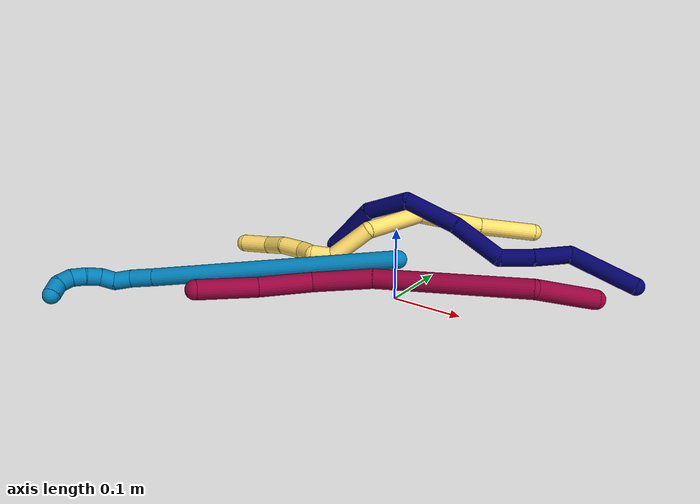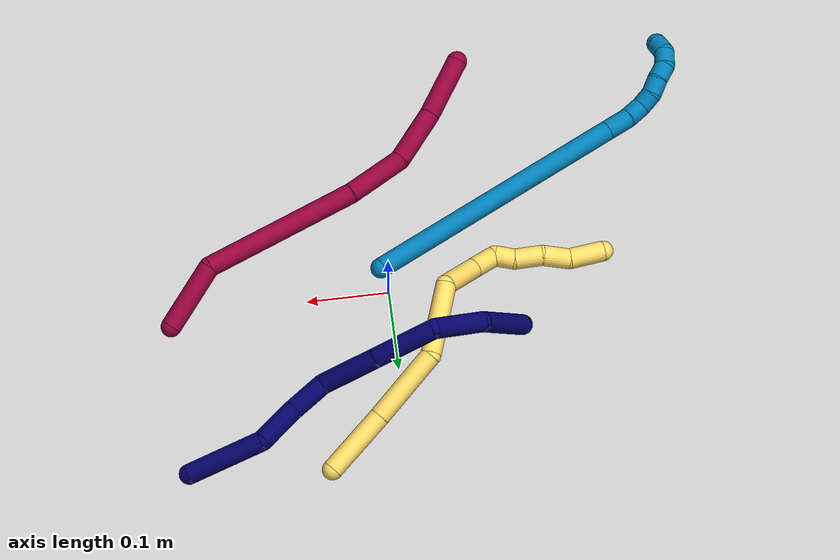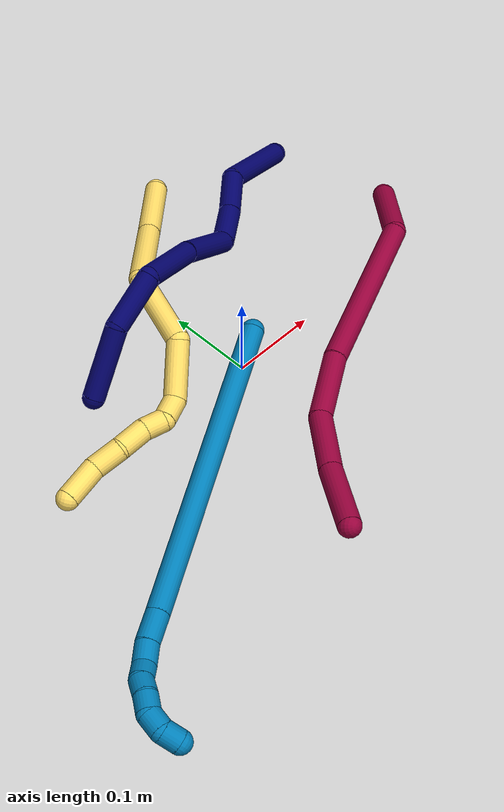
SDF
<sdf version="1.7">
 <world name="default">
  <model name="5">
   <static>0</static>
   <link name="5">
    <collision name="collision-cylinder-e_1_1_4">
     <pose>-0.02681 -0.032291 0.002354 1.49804 -0.691631 -0.646477</pose>
     <geometry><cylinder><radius>0.0125</radius><length>0.084072</length></cylinder></geometry>
     <surface>
      <friction><ode><mu>1.16</mu><mu2>1.16</mu2><slip1>0</slip1><slip2>0</slip2></ode></friction>
      <contact><ode><kp>1e+06</kp><kd>1</kd><max_vel>0</max_vel><min_depth>0.001</min_depth></ode></contact>
     </surface>
    </collision>
    <visual name="visual-cylinder-e_1_1_4">
     <pose>-0.02681 -0.032291 0.002354 1.49804 -0.691631 -0.646477</pose>
     <geometry><cylinder><radius>0.0125</radius><length>0.084072</length></cylinder></geometry>
     <material><ambient>1 0.858824 0.4 1</ambient></material>
    </visual>
    <collision name="collision-cylinder-e_2_4_5">
     <pose>-0.080506 -0.102997 0.008243 1.47903 -0.60865 -0.55806</pose>
     <geometry><cylinder><radius>0.0125</radius><length>0.094044</length></cylinder></geometry>
     <surface>
      <friction><ode><mu>1.16</mu><mu2>1.16</mu2><slip1>0</slip1><slip2>0</slip2></ode></friction>
      <contact><ode><kp>1e+06</kp><kd>1</kd><max_vel>0</max_vel><min_depth>0.001</min_depth></ode></contact>
     </surface>
    </collision>
    <visual name="visual-cylinder-e_2_4_5">
     <pose>-0.080506 -0.102997 0.008243 1.47903 -0.60865 -0.55806</pose>
     <geometry><cylinder><radius>0.0125</radius><length>0.094044</length></cylinder></geometry>
     <material><ambient>1 0.858824 0.4 1</ambient></material>
    </visual>
    <collision name="collision-cylinder-e_3_5_6">
     <pose>-0.134337 -0.172401 -0.011085 2.20644 -0.610533 -1.11589</pose>
     <geometry><cylinder><radius>0.0125</radius><length>0.094001</length></cylinder></geometry>
     <surface>
      <friction><ode><mu>1.16</mu><mu2>1.16</mu2><slip1>0</slip1><slip2>0</slip2></ode></friction>
      <contact><ode><kp>1e+06</kp><kd>1</kd><max_vel>0</max_vel><min_depth>0.001</min_depth></ode></contact>
     </surface>
    </collision>
    <visual name="visual-cylinder-e_3_5_6">
     <pose>-0.134337 -0.172401 -0.011085 2.20644 -0.610533 -1.11589</pose>
     <geometry><cylinder><radius>0.0125</radius><length>0.094001</length></cylinder></geometry>
     <material><ambient>1 0.858824 0.4 1</ambient></material>
    </visual>
    <collision name="collision-cylinder-e_4_6_7">
     <pose>-0.192402 -0.206831 -0.03912 2.55447 -1.37374 -2.43527</pose>
     <geometry><cylinder><radius>0.0125</radius><length>0.063467</length></cylinder></geometry>
     <surface>
      <friction><ode><mu>1.16</mu><mu2>1.16</mu2><slip1>0</slip1><slip2>0</slip2></ode></friction>
      <contact><ode><kp>1e+06</kp><kd>1</kd><max_vel>0</max_vel><min_depth>0.001</min_depth></ode></contact>
     </surface>
    </collision>
    <visual name="visual-cylinder-e_4_6_7">
     <pose>-0.192402 -0.206831 -0.03912 2.55447 -1.37374 -2.43527</pose>
     <geometry><cylinder><radius>0.0125</radius><length>0.063467</length></cylinder></geometry>
     <material><ambient>1 0.858824 0.4 1</ambient></material>
    </visual>
    <collision name="collision-cylinder-e_5_7_8">
     <pose>-0.234296 -0.219417 -0.039709 1.10612 -0.811424 -0.518401</pose>
     <geometry><cylinder><radius>0.0125</radius><length>0.029714</length></cylinder></geometry>
     <surface>
      <friction><ode><mu>1.16</mu><mu2>1.16</mu2><slip1>0</slip1><slip2>0</slip2></ode></friction>
      <contact><ode><kp>1e+06</kp><kd>1</kd><max_vel>0</max_vel><min_depth>0.001</min_depth></ode></contact>
     </surface>
    </collision>
    <visual name="visual-cylinder-e_5_7_8">
     <pose>-0.234296 -0.219417 -0.039709 1.10612 -0.811424 -0.518401</pose>
     <geometry><cylinder><radius>0.0125</radius><length>0.029714</length></cylinder></geometry>
     <material><ambient>1 0.858824 0.4 1</ambient></material>
    </visual>
    <collision name="collision-cylinder-e_6_8_9">
     <pose>-0.252293 -0.230018 -0.02553 0.150702 -0.639727 -0.050003</pose>
     <geometry><cylinder><radius>0.0125</radius><length>0.024194</length></cylinder></geometry>
     <surface>
      <friction><ode><mu>1.16</mu><mu2>1.16</mu2><slip1>0</slip1><slip2>0</slip2></ode></friction>
      <contact><ode><kp>1e+06</kp><kd>1</kd><max_vel>0</max_vel><min_depth>0.001</min_depth></ode></contact>
     </surface>
    </collision>
    <visual name="visual-cylinder-e_6_8_9">
     <pose>-0.252293 -0.230018 -0.02553 0.150702 -0.639727 -0.050003</pose>
     <geometry><cylinder><radius>0.0125</radius><length>0.024194</length></cylinder></geometry>
     <material><ambient>1 0.858824 0.4 1</ambient></material>
    </visual>
    <collision name="collision-cylinder-e_7_9_10">
     <pose>-0.271214 -0.23772 -0.005525 0.540406 -0.766913 -0.222556</pose>
     <geometry><cylinder><radius>0.0125</radius><length>0.03372</length></cylinder></geometry>
     <surface>
      <friction><ode><mu>1.16</mu><mu2>1.16</mu2><slip1>0</slip1><slip2>0</slip2></ode></friction>
      <contact><ode><kp>1e+06</kp><kd>1</kd><max_vel>0</max_vel><min_depth>0.001</min_depth></ode></contact>
     </surface>
    </collision>
    <visual name="visual-cylinder-e_7_9_10">
     <pose>-0.271214 -0.23772 -0.005525 0.540406 -0.766913 -0.222556</pose>
     <geometry><cylinder><radius>0.0125</radius><length>0.03372</length></cylinder></geometry>
     <material><ambient>1 0.858824 0.4 1</ambient></material>
    </visual>
    <collision name="collision-cylinder-e_8_10_11">
     <pose>-0.295523 -0.2452 0.01587 0.111795 -0.851006 -0.050706</pose>
     <geometry><cylinder><radius>0.0125</radius><length>0.033538</length></cylinder></geometry>
     <surface>
      <friction><ode><mu>1.16</mu><mu2>1.16</mu2><slip1>0</slip1><slip2>0</slip2></ode></friction>
      <contact><ode><kp>1e+06</kp><kd>1</kd><max_vel>0</max_vel><min_depth>0.001</min_depth></ode></contact>
     </surface>
    </collision>
    <visual name="visual-cylinder-e_8_10_11">
     <pose>-0.295523 -0.2452 0.01587 0.111795 -0.851006 -0.050706</pose>
     <geometry><cylinder><radius>0.0125</radius><length>0.033538</length></cylinder></geometry>
     <material><ambient>1 0.858824 0.4 1</ambient></material>
    </visual>
    <collision name="collision-cylinder-e_9_11_2">
     <pose>-0.325271 -0.254534 0.037261 0.661561 -0.915 -0.334968</pose>
     <geometry><cylinder><radius>0.0125</radius><length>0.04325</length></cylinder></geometry>
     <surface>
      <friction><ode><mu>1.16</mu><mu2>1.16</mu2><slip1>0</slip1><slip2>0</slip2></ode></friction>
      <contact><ode><kp>1e+06</kp><kd>1</kd><max_vel>0</max_vel><min_depth>0.001</min_depth></ode></contact>
     </surface>
    </collision>
    <visual name="visual-cylinder-e_9_11_2">
     <pose>-0.325271 -0.254534 0.037261 0.661561 -0.915 -0.334968</pose>
     <geometry><cylinder><radius>0.0125</radius><length>0.04325</length></cylinder></geometry>
     <material><ambient>1 0.858824 0.4 1</ambient></material>
    </visual>
    <collision name="collision-sphere-2">
     <pose>-0.342411 -0.262635 0.047665 0 -0 0</pose>
     <geometry><sphere><radius>0.0125</radius></sphere></geometry>
     <surface>
      <friction><ode><mu>1.16</mu><mu2>1.16</mu2><slip1>0</slip1><slip2>0</slip2></ode></friction>
      <contact><ode><kp>1e+06</kp><kd>1</kd><max_vel>0</max_vel><min_depth>0.001</min_depth></ode></contact>
     </surface>
    </collision>
    <visual name="visual-sphere-2">
     <pose>-0.342411 -0.262635 0.047665 0 -0 0</pose>
     <geometry><sphere><radius>0.0125</radius></sphere></geometry>
     <material><ambient>1 0.858824 0.4 1</ambient></material>
    </visual>
    <collision name="collision-sphere-11">
     <pose>-0.308132 -0.246433 0.026856 0 -0 0</pose>
     <geometry><sphere><radius>0.0125</radius></sphere></geometry>
     <surface>
      <friction><ode><mu>1.16</mu><mu2>1.16</mu2><slip1>0</slip1><slip2>0</slip2></ode></friction>
      <contact><ode><kp>1e+06</kp><kd>1</kd><max_vel>0</max_vel><min_depth>0.001</min_depth></ode></contact>
     </surface>
    </collision>
    <visual name="visual-sphere-11">
     <pose>-0.308132 -0.246433 0.026856 0 -0 0</pose>
     <geometry><sphere><radius>0.0125</radius></sphere></geometry>
     <material><ambient>1 0.858824 0.4 1</ambient></material>
    </visual>
    <collision name="collision-sphere-10">
     <pose>-0.282914 -0.243966 0.004885 0 -0 0</pose>
     <geometry><sphere><radius>0.0125</radius></sphere></geometry>
     <surface>
      <friction><ode><mu>1.16</mu><mu2>1.16</mu2><slip1>0</slip1><slip2>0</slip2></ode></friction>
      <contact><ode><kp>1e+06</kp><kd>1</kd><max_vel>0</max_vel><min_depth>0.001</min_depth></ode></contact>
     </surface>
    </collision>
    <visual name="visual-sphere-10">
     <pose>-0.282914 -0.243966 0.004885 0 -0 0</pose>
     <geometry><sphere><radius>0.0125</radius></sphere></geometry>
     <material><ambient>1 0.858824 0.4 1</ambient></material>
    </visual>
    <collision name="collision-sphere-9">
     <pose>-0.259515 -0.231475 -0.015935 0 -0 0</pose>
     <geometry><sphere><radius>0.0125</radius></sphere></geometry>
     <surface>
      <friction><ode><mu>1.16</mu><mu2>1.16</mu2><slip1>0</slip1><slip2>0</slip2></ode></friction>
      <contact><ode><kp>1e+06</kp><kd>1</kd><max_vel>0</max_vel><min_depth>0.001</min_depth></ode></contact>
     </surface>
    </collision>
    <visual name="visual-sphere-9">
     <pose>-0.259515 -0.231475 -0.015935 0 -0 0</pose>
     <geometry><sphere><radius>0.0125</radius></sphere></geometry>
     <material><ambient>1 0.858824 0.4 1</ambient></material>
    </visual>
    <collision name="collision-sphere-4">
     <pose>-0.053621 -0.064582 0.004707 0 -0 0</pose>
     <geometry><sphere><radius>0.0125</radius></sphere></geometry>
     <surface>
      <friction><ode><mu>1.16</mu><mu2>1.16</mu2><slip1>0</slip1><slip2>0</slip2></ode></friction>
      <contact><ode><kp>1e+06</kp><kd>1</kd><max_vel>0</max_vel><min_depth>0.001</min_depth></ode></contact>
     </surface>
    </collision>
    <visual name="visual-sphere-4">
     <pose>-0.053621 -0.064582 0.004707 0 -0 0</pose>
     <geometry><sphere><radius>0.0125</radius></sphere></geometry>
     <material><ambient>1 0.858824 0.4 1</ambient></material>
    </visual>
    <collision name="collision-sphere-1">
     <geometry><sphere><radius>0.0125</radius></sphere></geometry>
     <surface>
      <friction><ode><mu>1.16</mu><mu2>1.16</mu2><slip1>0</slip1><slip2>0</slip2></ode></friction>
      <contact><ode><kp>1e+06</kp><kd>1</kd><max_vel>0</max_vel><min_depth>0.001</min_depth></ode></contact>
     </surface>
    </collision>
    <visual name="visual-sphere-1">
     <geometry><sphere><radius>0.0125</radius></sphere></geometry>
     <material><ambient>1 0.858824 0.4 1</ambient></material>
    </visual>
    <collision name="collision-sphere-8">
     <pose>-0.245072 -0.228561 -0.035125 0 -0 0</pose>
     <geometry><sphere><radius>0.0125</radius></sphere></geometry>
     <surface>
      <friction><ode><mu>1.16</mu><mu2>1.16</mu2><slip1>0</slip1><slip2>0</slip2></ode></friction>
      <contact><ode><kp>1e+06</kp><kd>1</kd><max_vel>0</max_vel><min_depth>0.001</min_depth></ode></contact>
     </surface>
    </collision>
    <visual name="visual-sphere-8">
     <pose>-0.245072 -0.228561 -0.035125 0 -0 0</pose>
     <geometry><sphere><radius>0.0125</radius></sphere></geometry>
     <material><ambient>1 0.858824 0.4 1</ambient></material>
    </visual>
    <collision name="collision-sphere-5">
     <pose>-0.107392 -0.141413 0.011778 0 -0 0</pose>
     <geometry><sphere><radius>0.0125</radius></sphere></geometry>
     <surface>
      <friction><ode><mu>1.16</mu><mu2>1.16</mu2><slip1>0</slip1><slip2>0</slip2></ode></friction>
      <contact><ode><kp>1e+06</kp><kd>1</kd><max_vel>0</max_vel><min_depth>0.001</min_depth></ode></contact>
     </surface>
    </collision>
    <visual name="visual-sphere-5">
     <pose>-0.107392 -0.141413 0.011778 0 -0 0</pose>
     <geometry><sphere><radius>0.0125</radius></sphere></geometry>
     <material><ambient>1 0.858824 0.4 1</ambient></material>
    </visual>
    <collision name="collision-sphere-6">
     <pose>-0.161283 -0.203389 -0.033948 0 -0 0</pose>
     <geometry><sphere><radius>0.0125</radius></sphere></geometry>
     <surface>
      <friction><ode><mu>1.16</mu><mu2>1.16</mu2><slip1>0</slip1><slip2>0</slip2></ode></friction>
      <contact><ode><kp>1e+06</kp><kd>1</kd><max_vel>0</max_vel><min_depth>0.001</min_depth></ode></contact>
     </surface>
    </collision>
    <visual name="visual-sphere-6">
     <pose>-0.161283 -0.203389 -0.033948 0 -0 0</pose>
     <geometry><sphere><radius>0.0125</radius></sphere></geometry>
     <material><ambient>1 0.858824 0.4 1</ambient></material>
    </visual>
    <collision name="collision-sphere-7">
     <pose>-0.223521 -0.210273 -0.044293 0 -0 0</pose>
     <geometry><sphere><radius>0.0125</radius></sphere></geometry>
     <surface>
      <friction><ode><mu>1.16</mu><mu2>1.16</mu2><slip1>0</slip1><slip2>0</slip2></ode></friction>
      <contact><ode><kp>1e+06</kp><kd>1</kd><max_vel>0</max_vel><min_depth>0.001</min_depth></ode></contact>
     </surface>
    </collision>
    <visual name="visual-sphere-7">
     <pose>-0.223521 -0.210273 -0.044293 0 -0 0</pose>
     <geometry><sphere><radius>0.0125</radius></sphere></geometry>
     <material><ambient>1 0.858824 0.4 1</ambient></material>
    </visual>
    <inertial>
     <pose>-0.161709 -0.162133 -0.004784 0 -0 0</pose>
     <mass>0.5</mass>
     <inertia>
      <ixx>-2.3e-05</ixx>
      <ixy>0</ixy>
      <ixz>0</ixz>
      <iyy>-3.1e-05</iyy>
      <iyz>0</iyz>
      <izz>0.000319</izz>
     </inertia>
    </inertial>
   </link>
   <pose>0.094887 0.233862 0.04665 -1.17644 -0.698499 0.471186</pose>
  </model>
  <model name="7">
   <static>0</static>
   <link name="7">
    <collision name="collision-cylinder-e_1_1_4">
     <pose>-0.030804 0.023376 -0.030326 -2.4849 -0.677476 1.60439</pose>
     <geometry><cylinder><radius>0.0125</radius><length>0.098285</length></cylinder></geometry>
     <surface>
      <friction><ode><mu>1.16</mu><mu2>1.16</mu2><slip1>0</slip1><slip2>0</slip2></ode></friction>
      <contact><ode><kp>1e+06</kp><kd>1</kd><max_vel>0</max_vel><min_depth>0.001</min_depth></ode></contact>
     </surface>
    </collision>
    <visual name="visual-cylinder-e_1_1_4">
     <pose>-0.030804 0.023376 -0.030326 -2.4849 -0.677476 1.60439</pose>
     <geometry><cylinder><radius>0.0125</radius><length>0.098285</length></cylinder></geometry>
     <material><ambient>0.003922 0 0.403922 1</ambient></material>
    </visual>
    <collision name="collision-cylinder-e_2_4_5">
     <pose>-0.086398 0.056695 -0.062763 -1.77995 -1.18167 1.38327</pose>
     <geometry><cylinder><radius>0.0125</radius><length>0.053587</length></cylinder></geometry>
     <surface>
      <friction><ode><mu>1.16</mu><mu2>1.16</mu2><slip1>0</slip1><slip2>0</slip2></ode></friction>
      <contact><ode><kp>1e+06</kp><kd>1</kd><max_vel>0</max_vel><min_depth>0.001</min_depth></ode></contact>
     </surface>
    </collision>
    <visual name="visual-cylinder-e_2_4_5">
     <pose>-0.086398 0.056695 -0.062763 -1.77995 -1.18167 1.38327</pose>
     <geometry><cylinder><radius>0.0125</radius><length>0.053587</length></cylinder></geometry>
     <material><ambient>0.003922 0 0.403922 1</ambient></material>
    </visual>
    <collision name="collision-cylinder-e_3_5_6">
     <pose>-0.132856 0.075744 -0.069081 -2.00363 -1.13723 1.56999</pose>
     <geometry><cylinder><radius>0.0125</radius><length>0.047754</length></cylinder></geometry>
     <surface>
      <friction><ode><mu>1.16</mu><mu2>1.16</mu2><slip1>0</slip1><slip2>0</slip2></ode></friction>
      <contact><ode><kp>1e+06</kp><kd>1</kd><max_vel>0</max_vel><min_depth>0.001</min_depth></ode></contact>
     </surface>
    </collision>
    <visual name="visual-cylinder-e_3_5_6">
     <pose>-0.132856 0.075744 -0.069081 -2.00363 -1.13723 1.56999</pose>
     <geometry><cylinder><radius>0.0125</radius><length>0.047754</length></cylinder></geometry>
     <material><ambient>0.003922 0 0.403922 1</ambient></material>
    </visual>
    <collision name="collision-cylinder-e_4_6_7">
     <pose>-0.172976 0.107214 -0.098646 -2.41885 -0.499574 1.18745</pose>
     <geometry><cylinder><radius>0.0125</radius><length>0.077037</length></cylinder></geometry>
     <surface>
      <friction><ode><mu>1.16</mu><mu2>1.16</mu2><slip1>0</slip1><slip2>0</slip2></ode></friction>
      <contact><ode><kp>1e+06</kp><kd>1</kd><max_vel>0</max_vel><min_depth>0.001</min_depth></ode></contact>
     </surface>
    </collision>
    <visual name="visual-cylinder-e_4_6_7">
     <pose>-0.172976 0.107214 -0.098646 -2.41885 -0.499574 1.18745</pose>
     <geometry><cylinder><radius>0.0125</radius><length>0.077037</length></cylinder></geometry>
     <material><ambient>0.003922 0 0.403922 1</ambient></material>
    </visual>
    <collision name="collision-cylinder-e_5_7_8">
     <pose>-0.215945 0.1493 -0.147403 -2.44124 -0.675442 1.53157</pose>
     <geometry><cylinder><radius>0.0125</radius><length>0.078423</length></cylinder></geometry>
     <surface>
      <friction><ode><mu>1.16</mu><mu2>1.16</mu2><slip1>0</slip1><slip2>0</slip2></ode></friction>
      <contact><ode><kp>1e+06</kp><kd>1</kd><max_vel>0</max_vel><min_depth>0.001</min_depth></ode></contact>
     </surface>
    </collision>
    <visual name="visual-cylinder-e_5_7_8">
     <pose>-0.215945 0.1493 -0.147403 -2.44124 -0.675442 1.53157</pose>
     <geometry><cylinder><radius>0.0125</radius><length>0.078423</length></cylinder></geometry>
     <material><ambient>0.003922 0 0.403922 1</ambient></material>
    </visual>
    <collision name="collision-cylinder-e_6_8_9">
     <pose>-0.269914 0.164536 -0.183832 2.81002 -1.13314 -2.62719</pose>
     <geometry><cylinder><radius>0.0125</radius><length>0.065035</length></cylinder></geometry>
     <surface>
      <friction><ode><mu>1.16</mu><mu2>1.16</mu2><slip1>0</slip1><slip2>0</slip2></ode></friction>
      <contact><ode><kp>1e+06</kp><kd>1</kd><max_vel>0</max_vel><min_depth>0.001</min_depth></ode></contact>
     </surface>
    </collision>
    <visual name="visual-cylinder-e_6_8_9">
     <pose>-0.269914 0.164536 -0.183832 2.81002 -1.13314 -2.62719</pose>
     <geometry><cylinder><radius>0.0125</radius><length>0.065035</length></cylinder></geometry>
     <material><ambient>0.003922 0 0.403922 1</ambient></material>
    </visual>
    <collision name="collision-cylinder-e_7_9_2">
     <pose>-0.3341 0.140651 -0.2004 1.75115 -1.05444 -1.21868</pose>
     <geometry><cylinder><radius>0.0125</radius><length>0.07988</length></cylinder></geometry>
     <surface>
      <friction><ode><mu>1.16</mu><mu2>1.16</mu2><slip1>0</slip1><slip2>0</slip2></ode></friction>
      <contact><ode><kp>1e+06</kp><kd>1</kd><max_vel>0</max_vel><min_depth>0.001</min_depth></ode></contact>
     </surface>
    </collision>
    <visual name="visual-cylinder-e_7_9_2">
     <pose>-0.3341 0.140651 -0.2004 1.75115 -1.05444 -1.21868</pose>
     <geometry><cylinder><radius>0.0125</radius><length>0.07988</length></cylinder></geometry>
     <material><ambient>0.003922 0 0.403922 1</ambient></material>
    </visual>
    <collision name="collision-sphere-2">
     <pose>-0.368832 0.121252 -0.203937 0 -0 0</pose>
     <geometry><sphere><radius>0.0125</radius></sphere></geometry>
     <surface>
      <friction><ode><mu>1.16</mu><mu2>1.16</mu2><slip1>0</slip1><slip2>0</slip2></ode></friction>
      <contact><ode><kp>1e+06</kp><kd>1</kd><max_vel>0</max_vel><min_depth>0.001</min_depth></ode></contact>
     </surface>
    </collision>
    <visual name="visual-sphere-2">
     <pose>-0.368832 0.121252 -0.203937 0 -0 0</pose>
     <geometry><sphere><radius>0.0125</radius></sphere></geometry>
     <material><ambient>0.003922 0 0.403922 1</ambient></material>
    </visual>
    <collision name="collision-sphere-9">
     <pose>-0.299367 0.16005 -0.196863 0 -0 0</pose>
     <geometry><sphere><radius>0.0125</radius></sphere></geometry>
     <surface>
      <friction><ode><mu>1.16</mu><mu2>1.16</mu2><slip1>0</slip1><slip2>0</slip2></ode></friction>
      <contact><ode><kp>1e+06</kp><kd>1</kd><max_vel>0</max_vel><min_depth>0.001</min_depth></ode></contact>
     </surface>
    </collision>
    <visual name="visual-sphere-9">
     <pose>-0.299367 0.16005 -0.196863 0 -0 0</pose>
     <geometry><sphere><radius>0.0125</radius></sphere></geometry>
     <material><ambient>0.003922 0 0.403922 1</ambient></material>
    </visual>
    <collision name="collision-sphere-4">
     <pose>-0.061608 0.046752 -0.060652 0 -0 0</pose>
     <geometry><sphere><radius>0.0125</radius></sphere></geometry>
     <surface>
      <friction><ode><mu>1.16</mu><mu2>1.16</mu2><slip1>0</slip1><slip2>0</slip2></ode></friction>
      <contact><ode><kp>1e+06</kp><kd>1</kd><max_vel>0</max_vel><min_depth>0.001</min_depth></ode></contact>
     </surface>
    </collision>
    <visual name="visual-sphere-4">
     <pose>-0.061608 0.046752 -0.060652 0 -0 0</pose>
     <geometry><sphere><radius>0.0125</radius></sphere></geometry>
     <material><ambient>0.003922 0 0.403922 1</ambient></material>
    </visual>
    <collision name="collision-sphere-1">
     <geometry><sphere><radius>0.0125</radius></sphere></geometry>
     <surface>
      <friction><ode><mu>1.16</mu><mu2>1.16</mu2><slip1>0</slip1><slip2>0</slip2></ode></friction>
      <contact><ode><kp>1e+06</kp><kd>1</kd><max_vel>0</max_vel><min_depth>0.001</min_depth></ode></contact>
     </surface>
    </collision>
    <visual name="visual-sphere-1">
     <geometry><sphere><radius>0.0125</radius></sphere></geometry>
     <material><ambient>0.003922 0 0.403922 1</ambient></material>
    </visual>
    <collision name="collision-sphere-8">
     <pose>-0.240462 0.169023 -0.170802 0 -0 0</pose>
     <geometry><sphere><radius>0.0125</radius></sphere></geometry>
     <surface>
      <friction><ode><mu>1.16</mu><mu2>1.16</mu2><slip1>0</slip1><slip2>0</slip2></ode></friction>
      <contact><ode><kp>1e+06</kp><kd>1</kd><max_vel>0</max_vel><min_depth>0.001</min_depth></ode></contact>
     </surface>
    </collision>
    <visual name="visual-sphere-8">
     <pose>-0.240462 0.169023 -0.170802 0 -0 0</pose>
     <geometry><sphere><radius>0.0125</radius></sphere></geometry>
     <material><ambient>0.003922 0 0.403922 1</ambient></material>
    </visual>
    <collision name="collision-sphere-5">
     <pose>-0.111188 0.066638 -0.064873 0 -0 0</pose>
     <geometry><sphere><radius>0.0125</radius></sphere></geometry>
     <surface>
      <friction><ode><mu>1.16</mu><mu2>1.16</mu2><slip1>0</slip1><slip2>0</slip2></ode></friction>
      <contact><ode><kp>1e+06</kp><kd>1</kd><max_vel>0</max_vel><min_depth>0.001</min_depth></ode></contact>
     </surface>
    </collision>
    <visual name="visual-sphere-5">
     <pose>-0.111188 0.066638 -0.064873 0 -0 0</pose>
     <geometry><sphere><radius>0.0125</radius></sphere></geometry>
     <material><ambient>0.003922 0 0.403922 1</ambient></material>
    </visual>
    <collision name="collision-sphere-6">
     <pose>-0.154524 0.08485 -0.073288 0 -0 0</pose>
     <geometry><sphere><radius>0.0125</radius></sphere></geometry>
     <surface>
      <friction><ode><mu>1.16</mu><mu2>1.16</mu2><slip1>0</slip1><slip2>0</slip2></ode></friction>
      <contact><ode><kp>1e+06</kp><kd>1</kd><max_vel>0</max_vel><min_depth>0.001</min_depth></ode></contact>
     </surface>
    </collision>
    <visual name="visual-sphere-6">
     <pose>-0.154524 0.08485 -0.073288 0 -0 0</pose>
     <geometry><sphere><radius>0.0125</radius></sphere></geometry>
     <material><ambient>0.003922 0 0.403922 1</ambient></material>
    </visual>
    <collision name="collision-sphere-7">
     <pose>-0.191428 0.129578 -0.124004 0 -0 0</pose>
     <geometry><sphere><radius>0.0125</radius></sphere></geometry>
     <surface>
      <friction><ode><mu>1.16</mu><mu2>1.16</mu2><slip1>0</slip1><slip2>0</slip2></ode></friction>
      <contact><ode><kp>1e+06</kp><kd>1</kd><max_vel>0</max_vel><min_depth>0.001</min_depth></ode></contact>
     </surface>
    </collision>
    <visual name="visual-sphere-7">
     <pose>-0.191428 0.129578 -0.124004 0 -0 0</pose>
     <geometry><sphere><radius>0.0125</radius></sphere></geometry>
     <material><ambient>0.003922 0 0.403922 1</ambient></material>
    </visual>
    <inertial>
     <pose>-0.177008 0.101713 -0.113531 0 -0 0</pose>
     <mass>0.5</mass>
     <inertia><ixx>9.9e-05</ixx><ixy>0</ixy><ixz>0</ixz><iyy>0.000256</iyy><iyz>0</iyz><izz>0.0001</izz></inertia>
    </inertial>
   </link>
   <pose>0.263524 0.205771 0.011478 1.92454 -0.436072 0.662937</pose>
  </model>
  <model name="8">
   <static>0</static>
   <link name="8">
    <collision name="collision-cylinder-e_1_1_4">
     <pose>-0.03243 0.000845 -0.027117 -3.11043 -0.874142 3.07492</pose>
     <geometry><cylinder><radius>0.0125</radius><length>0.084563</length></cylinder></geometry>
     <surface>
      <friction><ode><mu>1.16</mu><mu2>1.16</mu2><slip1>0</slip1><slip2>0</slip2></ode></friction>
      <contact><ode><kp>1e+06</kp><kd>1</kd><max_vel>0</max_vel><min_depth>0.001</min_depth></ode></contact>
     </surface>
    </collision>
    <visual name="visual-cylinder-e_1_1_4">
     <pose>-0.03243 0.000845 -0.027117 -3.11043 -0.874142 3.07492</pose>
     <geometry><cylinder><radius>0.0125</radius><length>0.084563</length></cylinder></geometry>
     <material><ambient>0.584314 0 0.227451 1</ambient></material>
    </visual>
    <collision name="collision-cylinder-e_2_4_5">
     <pose>-0.160796 0.005016 -0.069502 -2.9271 -1.40933 2.88971</pose>
     <geometry><cylinder><radius>0.0125</radius><length>0.194401</length></cylinder></geometry>
     <surface>
      <friction><ode><mu>1.16</mu><mu2>1.16</mu2><slip1>0</slip1><slip2>0</slip2></ode></friction>
      <contact><ode><kp>1e+06</kp><kd>1</kd><max_vel>0</max_vel><min_depth>0.001</min_depth></ode></contact>
     </surface>
    </collision>
    <visual name="visual-cylinder-e_2_4_5">
     <pose>-0.160796 0.005016 -0.069502 -2.9271 -1.40933 2.88971</pose>
     <geometry><cylinder><radius>0.0125</radius><length>0.194401</length></cylinder></geometry>
     <material><ambient>0.584314 0 0.227451 1</ambient></material>
    </visual>
    <collision name="collision-cylinder-e_3_5_6">
     <pose>-0.293044 0.014943 -0.094046 -2.52311 -1.26699 2.32099</pose>
     <geometry><cylinder><radius>0.0125</radius><length>0.076109</length></cylinder></geometry>
     <surface>
      <friction><ode><mu>1.16</mu><mu2>1.16</mu2><slip1>0</slip1><slip2>0</slip2></ode></friction>
      <contact><ode><kp>1e+06</kp><kd>1</kd><max_vel>0</max_vel><min_depth>0.001</min_depth></ode></contact>
     </surface>
    </collision>
    <visual name="visual-cylinder-e_3_5_6">
     <pose>-0.293044 0.014943 -0.094046 -2.52311 -1.26699 2.32099</pose>
     <geometry><cylinder><radius>0.0125</radius><length>0.076109</length></cylinder></geometry>
     <material><ambient>0.584314 0 0.227451 1</ambient></material>
    </visual>
    <collision name="collision-cylinder-e_4_6_7">
     <pose>-0.35672 0.030252 -0.122619 -2.71768 -0.91229 2.31497</pose>
     <geometry><cylinder><radius>0.0125</radius><length>0.069196</length></cylinder></geometry>
     <surface>
      <friction><ode><mu>1.16</mu><mu2>1.16</mu2><slip1>0</slip1><slip2>0</slip2></ode></friction>
      <contact><ode><kp>1e+06</kp><kd>1</kd><max_vel>0</max_vel><min_depth>0.001</min_depth></ode></contact>
     </surface>
    </collision>
    <visual name="visual-cylinder-e_4_6_7">
     <pose>-0.35672 0.030252 -0.122619 -2.71768 -0.91229 2.31497</pose>
     <geometry><cylinder><radius>0.0125</radius><length>0.069196</length></cylinder></geometry>
     <material><ambient>0.584314 0 0.227451 1</ambient></material>
    </visual>
    <collision name="collision-cylinder-e_5_7_2">
     <pose>-0.411497 0.046926 -0.166793 -2.83171 -0.809547 2.4424</pose>
     <geometry><cylinder><radius>0.0125</radius><length>0.07573</length></cylinder></geometry>
     <surface>
      <friction><ode><mu>1.16</mu><mu2>1.16</mu2><slip1>0</slip1><slip2>0</slip2></ode></friction>
      <contact><ode><kp>1e+06</kp><kd>1</kd><max_vel>0</max_vel><min_depth>0.001</min_depth></ode></contact>
     </surface>
    </collision>
    <visual name="visual-cylinder-e_5_7_2">
     <pose>-0.411497 0.046926 -0.166793 -2.83171 -0.809547 2.4424</pose>
     <geometry><cylinder><radius>0.0125</radius><length>0.07573</length></cylinder></geometry>
     <material><ambient>0.584314 0 0.227451 1</ambient></material>
    </visual>
    <collision name="collision-sphere-2">
     <pose>-0.43891 0.054891 -0.19167 0 -0 0</pose>
     <geometry><sphere><radius>0.0125</radius></sphere></geometry>
     <surface>
      <friction><ode><mu>1.16</mu><mu2>1.16</mu2><slip1>0</slip1><slip2>0</slip2></ode></friction>
      <contact><ode><kp>1e+06</kp><kd>1</kd><max_vel>0</max_vel><min_depth>0.001</min_depth></ode></contact>
     </surface>
    </collision>
    <visual name="visual-sphere-2">
     <pose>-0.43891 0.054891 -0.19167 0 -0 0</pose>
     <geometry><sphere><radius>0.0125</radius></sphere></geometry>
     <material><ambient>0.584314 0 0.227451 1</ambient></material>
    </visual>
    <collision name="collision-sphere-7">
     <pose>-0.384083 0.038961 -0.141917 0 -0 0</pose>
     <geometry><sphere><radius>0.0125</radius></sphere></geometry>
     <surface>
      <friction><ode><mu>1.16</mu><mu2>1.16</mu2><slip1>0</slip1><slip2>0</slip2></ode></friction>
      <contact><ode><kp>1e+06</kp><kd>1</kd><max_vel>0</max_vel><min_depth>0.001</min_depth></ode></contact>
     </surface>
    </collision>
    <visual name="visual-sphere-7">
     <pose>-0.384083 0.038961 -0.141917 0 -0 0</pose>
     <geometry><sphere><radius>0.0125</radius></sphere></geometry>
     <material><ambient>0.584314 0 0.227451 1</ambient></material>
    </visual>
    <collision name="collision-sphere-6">
     <pose>-0.329356 0.021544 -0.103321 0 -0 0</pose>
     <geometry><sphere><radius>0.0125</radius></sphere></geometry>
     <surface>
      <friction><ode><mu>1.16</mu><mu2>1.16</mu2><slip1>0</slip1><slip2>0</slip2></ode></friction>
      <contact><ode><kp>1e+06</kp><kd>1</kd><max_vel>0</max_vel><min_depth>0.001</min_depth></ode></contact>
     </surface>
    </collision>
    <visual name="visual-sphere-6">
     <pose>-0.329356 0.021544 -0.103321 0 -0 0</pose>
     <geometry><sphere><radius>0.0125</radius></sphere></geometry>
     <material><ambient>0.584314 0 0.227451 1</ambient></material>
    </visual>
    <collision name="collision-sphere-5">
     <pose>-0.256732 0.008343 -0.084771 0 -0 0</pose>
     <geometry><sphere><radius>0.0125</radius></sphere></geometry>
     <surface>
      <friction><ode><mu>1.16</mu><mu2>1.16</mu2><slip1>0</slip1><slip2>0</slip2></ode></friction>
      <contact><ode><kp>1e+06</kp><kd>1</kd><max_vel>0</max_vel><min_depth>0.001</min_depth></ode></contact>
     </surface>
    </collision>
    <visual name="visual-sphere-5">
     <pose>-0.256732 0.008343 -0.084771 0 -0 0</pose>
     <geometry><sphere><radius>0.0125</radius></sphere></geometry>
     <material><ambient>0.584314 0 0.227451 1</ambient></material>
    </visual>
    <collision name="collision-sphere-1">
     <geometry><sphere><radius>0.0125</radius></sphere></geometry>
     <surface>
      <friction><ode><mu>1.16</mu><mu2>1.16</mu2><slip1>0</slip1><slip2>0</slip2></ode></friction>
      <contact><ode><kp>1e+06</kp><kd>1</kd><max_vel>0</max_vel><min_depth>0.001</min_depth></ode></contact>
     </surface>
    </collision>
    <visual name="visual-sphere-1">
     <geometry><sphere><radius>0.0125</radius></sphere></geometry>
     <material><ambient>0.584314 0 0.227451 1</ambient></material>
    </visual>
    <collision name="collision-sphere-4">
     <pose>-0.064859 0.00169 -0.054234 0 -0 0</pose>
     <geometry><sphere><radius>0.0125</radius></sphere></geometry>
     <surface>
      <friction><ode><mu>1.16</mu><mu2>1.16</mu2><slip1>0</slip1><slip2>0</slip2></ode></friction>
      <contact><ode><kp>1e+06</kp><kd>1</kd><max_vel>0</max_vel><min_depth>0.001</min_depth></ode></contact>
     </surface>
    </collision>
    <visual name="visual-sphere-4">
     <pose>-0.064859 0.00169 -0.054234 0 -0 0</pose>
     <geometry><sphere><radius>0.0125</radius></sphere></geometry>
     <material><ambient>0.584314 0 0.227451 1</ambient></material>
    </visual>
    <inertial>
     <pose>-0.224302 0.015662 -0.088157 0 -0 0</pose>
     <mass>0.5</mass>
     <inertia>
      <ixx>-0.00014</ixx>
      <ixy>0</ixy>
      <ixz>0</ixz>
      <iyy>0.000842</iyy>
      <iyz>0</iyz>
      <izz>0.000683</izz>
     </inertia>
    </inertial>
   </link>
   <pose>0.265167 0.034067 0.056735 -2.13473 -0.079838 0.250044</pose>
  </model>
  <model name="9">
   <static>0</static>
   <link name="9">
    <collision name="collision-cylinder-e_1_1_4">
     <pose>-0.0066 -0.009101 0.171075 0.05315 -0.038508 -0.001024</pose>
     <geometry><cylinder><radius>0.0125</radius><length>0.342889</length></cylinder></geometry>
     <surface>
      <friction><ode><mu>1.16</mu><mu2>1.16</mu2><slip1>0</slip1><slip2>0</slip2></ode></friction>
      <contact><ode><kp>1e+06</kp><kd>1</kd><max_vel>0</max_vel><min_depth>0.001</min_depth></ode></contact>
     </surface>
    </collision>
    <visual name="visual-cylinder-e_1_1_4">
     <pose>-0.0066 -0.009101 0.171075 0.05315 -0.038508 -0.001024</pose>
     <geometry><cylinder><radius>0.0125</radius><length>0.342889</length></cylinder></geometry>
     <material><ambient>0 0.490196 0.709804 1</ambient></material>
    </visual>
    <collision name="collision-cylinder-e_2_4_5">
     <pose>-0.013825 -0.018786 0.358367 0.035978 -0.038456 -0.000692</pose>
     <geometry><cylinder><radius>0.0125</radius><length>0.032478</length></cylinder></geometry>
     <surface>
      <friction><ode><mu>1.16</mu><mu2>1.16</mu2><slip1>0</slip1><slip2>0</slip2></ode></friction>
      <contact><ode><kp>1e+06</kp><kd>1</kd><max_vel>0</max_vel><min_depth>0.001</min_depth></ode></contact>
     </surface>
    </collision>
    <visual name="visual-cylinder-e_2_4_5">
     <pose>-0.013825 -0.018786 0.358367 0.035978 -0.038456 -0.000692</pose>
     <geometry><cylinder><radius>0.0125</radius><length>0.032478</length></cylinder></geometry>
     <material><ambient>0 0.490196 0.709804 1</ambient></material>
    </visual>
    <collision name="collision-cylinder-e_3_5_6">
     <pose>-0.013222 -0.021191 0.386457 0.152232 0.101826 0.007772</pose>
     <geometry><cylinder><radius>0.0125</radius><length>0.024149</length></cylinder></geometry>
     <surface>
      <friction><ode><mu>1.16</mu><mu2>1.16</mu2><slip1>0</slip1><slip2>0</slip2></ode></friction>
      <contact><ode><kp>1e+06</kp><kd>1</kd><max_vel>0</max_vel><min_depth>0.001</min_depth></ode></contact>
     </surface>
    </collision>
    <visual name="visual-cylinder-e_3_5_6">
     <pose>-0.013222 -0.021191 0.386457 0.152232 0.101826 0.007772</pose>
     <geometry><cylinder><radius>0.0125</radius><length>0.024149</length></cylinder></geometry>
     <material><ambient>0 0.490196 0.709804 1</ambient></material>
    </visual>
    <collision name="collision-cylinder-e_4_6_7">
     <pose>-0.008666 -0.020245 0.407457 -0.294453 0.335779 -0.050259</pose>
     <geometry><cylinder><radius>0.0125</radius><length>0.020203</length></cylinder></geometry>
     <surface>
      <friction><ode><mu>1.16</mu><mu2>1.16</mu2><slip1>0</slip1><slip2>0</slip2></ode></friction>
      <contact><ode><kp>1e+06</kp><kd>1</kd><max_vel>0</max_vel><min_depth>0.001</min_depth></ode></contact>
     </surface>
    </collision>
    <visual name="visual-cylinder-e_4_6_7">
     <pose>-0.008666 -0.020245 0.407457 -0.294453 0.335779 -0.050259</pose>
     <geometry><cylinder><radius>0.0125</radius><length>0.020203</length></cylinder></geometry>
     <material><ambient>0 0.490196 0.709804 1</ambient></material>
    </visual>
    <collision name="collision-cylinder-e_5_7_8">
     <pose>0.000357 -0.017375 0.42493 -0.012284 0.59867 -0.003791</pose>
     <geometry><cylinder><radius>0.0125</radius><length>0.020209</length></cylinder></geometry>
     <surface>
      <friction><ode><mu>1.16</mu><mu2>1.16</mu2><slip1>0</slip1><slip2>0</slip2></ode></friction>
      <contact><ode><kp>1e+06</kp><kd>1</kd><max_vel>0</max_vel><min_depth>0.001</min_depth></ode></contact>
     </surface>
    </collision>
    <visual name="visual-cylinder-e_5_7_8">
     <pose>0.000357 -0.017375 0.42493 -0.012284 0.59867 -0.003791</pose>
     <geometry><cylinder><radius>0.0125</radius><length>0.020209</length></cylinder></geometry>
     <material><ambient>0 0.490196 0.709804 1</ambient></material>
    </visual>
    <collision name="collision-cylinder-e_6_8_9">
     <pose>0.010353 -0.018525 0.442229 0.139074 0.444139 0.03145</pose>
     <geometry><cylinder><radius>0.0125</radius><length>0.020022</length></cylinder></geometry>
     <surface>
      <friction><ode><mu>1.16</mu><mu2>1.16</mu2><slip1>0</slip1><slip2>0</slip2></ode></friction>
      <contact><ode><kp>1e+06</kp><kd>1</kd><max_vel>0</max_vel><min_depth>0.001</min_depth></ode></contact>
     </surface>
    </collision>
    <visual name="visual-cylinder-e_6_8_9">
     <pose>0.010353 -0.018525 0.442229 0.139074 0.444139 0.03145</pose>
     <geometry><cylinder><radius>0.0125</radius><length>0.020022</length></cylinder></geometry>
     <material><ambient>0 0.490196 0.709804 1</ambient></material>
    </visual>
    <collision name="collision-cylinder-e_7_9_10">
     <pose>0.021186 -0.024465 0.457129 0.667398 0.711787 0.256312</pose>
     <geometry><cylinder><radius>0.0125</radius><length>0.02</length></cylinder></geometry>
     <surface>
      <friction><ode><mu>1.16</mu><mu2>1.16</mu2><slip1>0</slip1><slip2>0</slip2></ode></friction>
      <contact><ode><kp>1e+06</kp><kd>1</kd><max_vel>0</max_vel><min_depth>0.001</min_depth></ode></contact>
     </surface>
    </collision>
    <visual name="visual-cylinder-e_7_9_10">
     <pose>0.021186 -0.024465 0.457129 0.667398 0.711787 0.256312</pose>
     <geometry><cylinder><radius>0.0125</radius><length>0.02</length></cylinder></geometry>
     <material><ambient>0 0.490196 0.709804 1</ambient></material>
    </visual>
    <collision name="collision-cylinder-e_8_10_2">
     <pose>0.033836 -0.036937 0.464645 1.37198 0.656403 0.543702</pose>
     <geometry><cylinder><radius>0.0125</radius><length>0.020049</length></cylinder></geometry>
     <surface>
      <friction><ode><mu>1.16</mu><mu2>1.16</mu2><slip1>0</slip1><slip2>0</slip2></ode></friction>
      <contact><ode><kp>1e+06</kp><kd>1</kd><max_vel>0</max_vel><min_depth>0.001</min_depth></ode></contact>
     </surface>
    </collision>
    <visual name="visual-cylinder-e_8_10_2">
     <pose>0.033836 -0.036937 0.464645 1.37198 0.656403 0.543702</pose>
     <geometry><cylinder><radius>0.0125</radius><length>0.020049</length></cylinder></geometry>
     <material><ambient>0 0.490196 0.709804 1</ambient></material>
    </visual>
    <collision name="collision-sphere-2">
     <pose>0.039954 -0.044722 0.466214 0 -0 0</pose>
     <geometry><sphere><radius>0.0125</radius></sphere></geometry>
     <surface>
      <friction><ode><mu>1.16</mu><mu2>1.16</mu2><slip1>0</slip1><slip2>0</slip2></ode></friction>
      <contact><ode><kp>1e+06</kp><kd>1</kd><max_vel>0</max_vel><min_depth>0.001</min_depth></ode></contact>
     </surface>
    </collision>
    <visual name="visual-sphere-2">
     <pose>0.039954 -0.044722 0.466214 0 -0 0</pose>
     <geometry><sphere><radius>0.0125</radius></sphere></geometry>
     <material><ambient>0 0.490196 0.709804 1</ambient></material>
    </visual>
    <collision name="collision-sphere-10">
     <pose>0.027718 -0.029152 0.463077 0 -0 0</pose>
     <geometry><sphere><radius>0.0125</radius></sphere></geometry>
     <surface>
      <friction><ode><mu>1.16</mu><mu2>1.16</mu2><slip1>0</slip1><slip2>0</slip2></ode></friction>
      <contact><ode><kp>1e+06</kp><kd>1</kd><max_vel>0</max_vel><min_depth>0.001</min_depth></ode></contact>
     </surface>
    </collision>
    <visual name="visual-sphere-10">
     <pose>0.027718 -0.029152 0.463077 0 -0 0</pose>
     <geometry><sphere><radius>0.0125</radius></sphere></geometry>
     <material><ambient>0 0.490196 0.709804 1</ambient></material>
    </visual>
    <collision name="collision-sphere-9">
     <pose>0.014654 -0.019778 0.451182 0 -0 0</pose>
     <geometry><sphere><radius>0.0125</radius></sphere></geometry>
     <surface>
      <friction><ode><mu>1.16</mu><mu2>1.16</mu2><slip1>0</slip1><slip2>0</slip2></ode></friction>
      <contact><ode><kp>1e+06</kp><kd>1</kd><max_vel>0</max_vel><min_depth>0.001</min_depth></ode></contact>
     </surface>
    </collision>
    <visual name="visual-sphere-9">
     <pose>0.014654 -0.019778 0.451182 0 -0 0</pose>
     <geometry><sphere><radius>0.0125</radius></sphere></geometry>
     <material><ambient>0 0.490196 0.709804 1</ambient></material>
    </visual>
    <collision name="collision-sphere-4">
     <pose>-0.013201 -0.018202 0.342151 0 -0 0</pose>
     <geometry><sphere><radius>0.0125</radius></sphere></geometry>
     <surface>
      <friction><ode><mu>1.16</mu><mu2>1.16</mu2><slip1>0</slip1><slip2>0</slip2></ode></friction>
      <contact><ode><kp>1e+06</kp><kd>1</kd><max_vel>0</max_vel><min_depth>0.001</min_depth></ode></contact>
     </surface>
    </collision>
    <visual name="visual-sphere-4">
     <pose>-0.013201 -0.018202 0.342151 0 -0 0</pose>
     <geometry><sphere><radius>0.0125</radius></sphere></geometry>
     <material><ambient>0 0.490196 0.709804 1</ambient></material>
    </visual>
    <collision name="collision-sphere-1">
     <geometry><sphere><radius>0.0125</radius></sphere></geometry>
     <surface>
      <friction><ode><mu>1.16</mu><mu2>1.16</mu2><slip1>0</slip1><slip2>0</slip2></ode></friction>
      <contact><ode><kp>1e+06</kp><kd>1</kd><max_vel>0</max_vel><min_depth>0.001</min_depth></ode></contact>
     </surface>
    </collision>
    <visual name="visual-sphere-1">
     <geometry><sphere><radius>0.0125</radius></sphere></geometry>
     <material><ambient>0 0.490196 0.709804 1</ambient></material>
    </visual>
    <collision name="collision-sphere-8">
     <pose>0.006051 -0.017272 0.433277 0 -0 0</pose>
     <geometry><sphere><radius>0.0125</radius></sphere></geometry>
     <surface>
      <friction><ode><mu>1.16</mu><mu2>1.16</mu2><slip1>0</slip1><slip2>0</slip2></ode></friction>
      <contact><ode><kp>1e+06</kp><kd>1</kd><max_vel>0</max_vel><min_depth>0.001</min_depth></ode></contact>
     </surface>
    </collision>
    <visual name="visual-sphere-8">
     <pose>0.006051 -0.017272 0.433277 0 -0 0</pose>
     <geometry><sphere><radius>0.0125</radius></sphere></geometry>
     <material><ambient>0 0.490196 0.709804 1</ambient></material>
    </visual>
    <collision name="collision-sphere-5">
     <pose>-0.014449 -0.01937 0.374584 0 -0 0</pose>
     <geometry><sphere><radius>0.0125</radius></sphere></geometry>
     <surface>
      <friction><ode><mu>1.16</mu><mu2>1.16</mu2><slip1>0</slip1><slip2>0</slip2></ode></friction>
      <contact><ode><kp>1e+06</kp><kd>1</kd><max_vel>0</max_vel><min_depth>0.001</min_depth></ode></contact>
     </surface>
    </collision>
    <visual name="visual-sphere-5">
     <pose>-0.014449 -0.01937 0.374584 0 -0 0</pose>
     <geometry><sphere><radius>0.0125</radius></sphere></geometry>
     <material><ambient>0 0.490196 0.709804 1</ambient></material>
    </visual>
    <collision name="collision-sphere-6">
     <pose>-0.011995 -0.023013 0.39833 0 -0 0</pose>
     <geometry><sphere><radius>0.0125</radius></sphere></geometry>
     <surface>
      <friction><ode><mu>1.16</mu><mu2>1.16</mu2><slip1>0</slip1><slip2>0</slip2></ode></friction>
      <contact><ode><kp>1e+06</kp><kd>1</kd><max_vel>0</max_vel><min_depth>0.001</min_depth></ode></contact>
     </surface>
    </collision>
    <visual name="visual-sphere-6">
     <pose>-0.011995 -0.023013 0.39833 0 -0 0</pose>
     <geometry><sphere><radius>0.0125</radius></sphere></geometry>
     <material><ambient>0 0.490196 0.709804 1</ambient></material>
    </visual>
    <collision name="collision-sphere-7">
     <pose>-0.005338 -0.017477 0.416583 0 -0 0</pose>
     <geometry><sphere><radius>0.0125</radius></sphere></geometry>
     <surface>
      <friction><ode><mu>1.16</mu><mu2>1.16</mu2><slip1>0</slip1><slip2>0</slip2></ode></friction>
      <contact><ode><kp>1e+06</kp><kd>1</kd><max_vel>0</max_vel><min_depth>0.001</min_depth></ode></contact>
     </surface>
    </collision>
    <visual name="visual-sphere-7">
     <pose>-0.005338 -0.017477 0.416583 0 -0 0</pose>
     <geometry><sphere><radius>0.0125</radius></sphere></geometry>
     <material><ambient>0 0.490196 0.709804 1</ambient></material>
    </visual>
    <inertial>
     <pose>-0.00378 -0.013207 0.247528 0 -0 0</pose>
     <mass>0.5</mass>
     <inertia>
      <ixx>0.003383</ixx>
      <ixy>0</ixy>
      <ixz>0</ixz>
      <iyy>0.003375</iyy>
      <iyz>0</iyz>
      <izz>0.000344</izz>
     </inertia>
    </inertial>
   </link>
   <pose>0.008017 -0.008169 0.062099 1.64051 -0.483849 -1.08997</pose>
  </model>
 </world>
</sdf>
